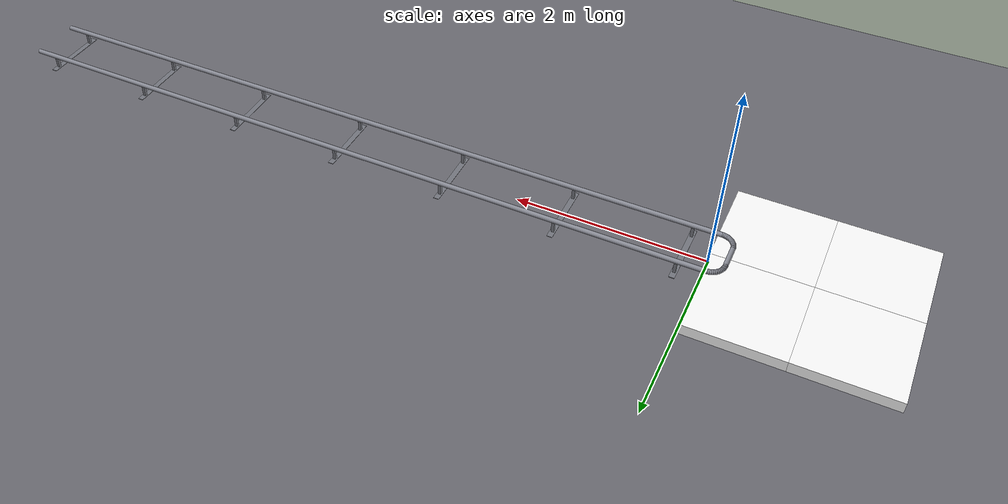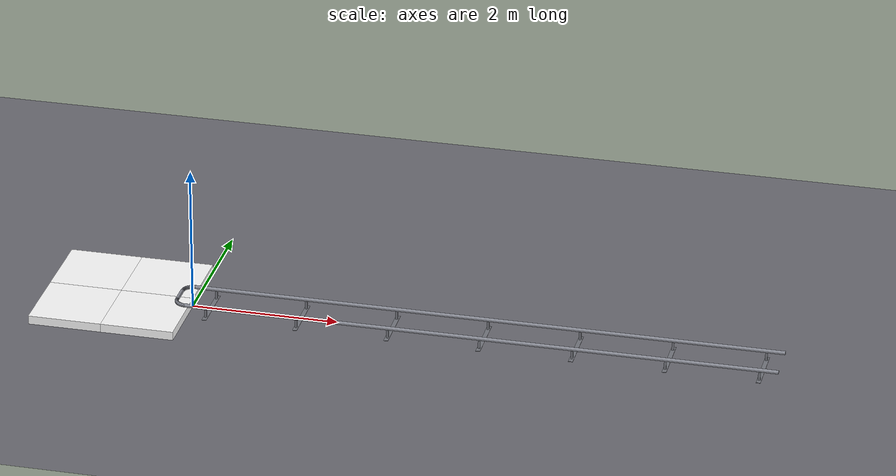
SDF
<?xml version="1.0" ?>
<!-- СГЕНЕРИРОВАНО scripts/gen_rails_world.py, руками не править. -->
<!-- Заезд на рельсы: фанера метр на метр и трубы с П-образным концом. -->
<sdf version="1.9">
  <world name="rails">
    <!-- Шаг 1 мс: у робота 48 отдельных тел роликов, и к ним
         добавился контакт бочки ролика с крутым бортом трубы. -->
    <physics name="1ms" type="dart">
      <max_step_size>0.001</max_step_size>
      <real_time_factor>1.0</real_time_factor>
    </physics>
    <plugin filename="gz-sim-physics-system" name="gz::sim::systems::Physics"/>
    <plugin filename="gz-sim-user-commands-system" name="gz::sim::systems::UserCommands"/>
    <plugin filename="gz-sim-scene-broadcaster-system" name="gz::sim::systems::SceneBroadcaster"/>
    <plugin filename="gz-sim-imu-system" name="gz::sim::systems::Imu"/>
    <plugin filename="gz-sim-sensors-system"
            name="gz::sim::systems::Sensors">
      <render_engine>ogre2</render_engine>
    </plugin>

    <light type="directional" name="sun">
      <cast_shadows>true</cast_shadows>
      <pose>0 0 10 0 0 0</pose>
      <diffuse>0.85 0.85 0.85 1</diffuse>
      <specular>0.25 0.25 0.25 1</specular>
      <direction>-0.4 0.2 -0.9</direction>
    </light>

    <model name="ground_plane">
      <static>true</static>
      <link name="link">
        <collision name="collision">
          <geometry><plane><normal>0 0 1</normal><size>60 60</size></plane></geometry>
          <surface><friction><ode><mu>1.0</mu><mu2>1.0</mu2></ode></friction></surface>
        </collision>
        <visual name="visual">
          <geometry><plane><normal>0 0 1</normal><size>60 60</size></plane></geometry>
          <material><ambient>0.32 0.32 0.34 1</ambient>
            <diffuse>0.42 0.42 0.45 1</diffuse></material>
        </visual>
      </link>
    </model>

    <model name="deck">
      <static>true</static>
      <link name="link">
        <collision name="collision">
          <pose>-1.0000 0.0000 0.0600 0 0 0</pose>
          <geometry><box><size>2.000 2.000 0.1200</size></box></geometry>
          <surface><friction><ode><mu>0.9</mu><mu2>0.9</mu2></ode></friction></surface>
        </collision>
        <visual name="sheet_0_0">
          <pose>-1.5000 -0.5000 0.0600 0 0 0.0000</pose>
          <geometry><box><size>1.0000 1.0000 0.1200</size></box></geometry>
          <material><diffuse>1 1 1 1</diffuse>
            <pbr><metal><albedo_map>model://maze_nav/meshes/plywood.png</albedo_map><roughness>0.85</roughness><metalness>0</metalness></metal></pbr></material>
        </visual>
        <visual name="sheet_0_1">
          <pose>-1.5000 0.5000 0.0600 0 0 1.5708</pose>
          <geometry><box><size>1.0000 1.0000 0.1200</size></box></geometry>
          <material><diffuse>1 1 1 1</diffuse>
            <pbr><metal><albedo_map>model://maze_nav/meshes/plywood.png</albedo_map><roughness>0.85</roughness><metalness>0</metalness></metal></pbr></material>
        </visual>
        <visual name="sheet_1_0">
          <pose>-0.5000 -0.5000 0.0600 0 0 1.5708</pose>
          <geometry><box><size>1.0000 1.0000 0.1200</size></box></geometry>
          <material><diffuse>1 1 1 1</diffuse>
            <pbr><metal><albedo_map>model://maze_nav/meshes/plywood.png</albedo_map><roughness>0.85</roughness><metalness>0</metalness></metal></pbr></material>
        </visual>
        <visual name="sheet_1_1">
          <pose>-0.5000 0.5000 0.0600 0 0 0.0000</pose>
          <geometry><box><size>1.0000 1.0000 0.1200</size></box></geometry>
          <material><diffuse>1 1 1 1</diffuse>
            <pbr><metal><albedo_map>model://maze_nav/meshes/plywood.png</albedo_map><roughness>0.85</roughness><metalness>0</metalness></metal></pbr></material>
        </visual>
      </link>
    </model>

    <!-- Рельсы: труба 51x2 мм,
         колея 545 мм, П-образный конец с радиусом
         145 мм и прямой перемычкой 255 мм.
         Масса прямых участков 39 кг. -->
    <model name="rails">
      <static>true</static>
      <link name="link">
        <collision name="collision_rail_l">
          <pose>3.9803 0.2725 0.1455 0 1.570796 0</pose>
          <geometry><cylinder><radius>0.02550</radius><length>8.0395</length></cylinder></geometry>
          <surface><friction><ode><mu>0.6</mu><mu2>0.6</mu2></ode></friction></surface>
        </collision>
        <visual name="visual_rail_l">
          <pose>3.9803 0.2725 0.1455 0 1.570796 0</pose>
          <geometry><cylinder><radius>0.02550</radius><length>8.0395</length></cylinder></geometry>
          <material><ambient>0.30 0.30 0.33 1</ambient>
            <diffuse>0.55 0.56 0.60 1</diffuse>
            <specular>0.45 0.45 0.45 1</specular></material>
        </visual>
        <collision name="collision_rail_r">
          <pose>3.9803 -0.2725 0.1455 0 1.570796 0</pose>
          <geometry><cylinder><radius>0.02550</radius><length>8.0395</length></cylinder></geometry>
          <surface><friction><ode><mu>0.6</mu><mu2>0.6</mu2></ode></friction></surface>
        </collision>
        <visual name="visual_rail_r">
          <pose>3.9803 -0.2725 0.1455 0 1.570796 0</pose>
          <geometry><cylinder><radius>0.02550</radius><length>8.0395</length></cylinder></geometry>
          <material><ambient>0.30 0.30 0.33 1</ambient>
            <diffuse>0.55 0.56 0.60 1</diffuse>
            <specular>0.45 0.45 0.45 1</specular></material>
        </visual>
        <collision name="collision_cross">
          <pose>-0.1845 0 0.1455 1.570796 0 0</pose>
          <geometry><cylinder><radius>0.02550</radius><length>0.2550</length></cylinder></geometry>
          <surface><friction><ode><mu>0.6</mu><mu2>0.6</mu2></ode></friction></surface>
        </collision>
        <visual name="visual_cross">
          <pose>-0.1845 0 0.1455 1.570796 0 0</pose>
          <geometry><cylinder><radius>0.02550</radius><length>0.2550</length></cylinder></geometry>
          <material><ambient>0.30 0.30 0.33 1</ambient>
            <diffuse>0.55 0.56 0.60 1</diffuse>
            <specular>0.45 0.45 0.45 1</specular></material>
        </visual>
        <collision name="collision_arc_l_0">
          <pose>-0.1843 0.1356 0.1455 0 1.570796 1.514696</pose>
          <geometry><cylinder><radius>0.02550</radius><length>0.0187</length></cylinder></geometry>
          <surface><friction><ode><mu>0.6</mu><mu2>0.6</mu2></ode></friction></surface>
        </collision>
        <visual name="visual_arc_l_0">
          <pose>-0.1843 0.1356 0.1455 0 1.570796 1.514696</pose>
          <geometry><cylinder><radius>0.02550</radius><length>0.0187</length></cylinder></geometry>
          <material><ambient>0.30 0.30 0.33 1</ambient>
            <diffuse>0.55 0.56 0.60 1</diffuse>
            <specular>0.45 0.45 0.45 1</specular></material>
        </visual>
        <collision name="collision_arc_l_1">
          <pose>-0.1825 0.1518 0.1455 0 1.570796 1.402497</pose>
          <geometry><cylinder><radius>0.02550</radius><length>0.0187</length></cylinder></geometry>
          <surface><friction><ode><mu>0.6</mu><mu2>0.6</mu2></ode></friction></surface>
        </collision>
        <visual name="visual_arc_l_1">
          <pose>-0.1825 0.1518 0.1455 0 1.570796 1.402497</pose>
          <geometry><cylinder><radius>0.02550</radius><length>0.0187</length></cylinder></geometry>
          <material><ambient>0.30 0.30 0.33 1</ambient>
            <diffuse>0.55 0.56 0.60 1</diffuse>
            <specular>0.45 0.45 0.45 1</specular></material>
        </visual>
        <collision name="collision_arc_l_2">
          <pose>-0.1788 0.1676 0.1455 0 1.570796 1.290297</pose>
          <geometry><cylinder><radius>0.02550</radius><length>0.0187</length></cylinder></geometry>
          <surface><friction><ode><mu>0.6</mu><mu2>0.6</mu2></ode></friction></surface>
        </collision>
        <visual name="visual_arc_l_2">
          <pose>-0.1788 0.1676 0.1455 0 1.570796 1.290297</pose>
          <geometry><cylinder><radius>0.02550</radius><length>0.0187</length></cylinder></geometry>
          <material><ambient>0.30 0.30 0.33 1</ambient>
            <diffuse>0.55 0.56 0.60 1</diffuse>
            <specular>0.45 0.45 0.45 1</specular></material>
        </visual>
        <collision name="collision_arc_l_3">
          <pose>-0.1735 0.1830 0.1455 0 1.570796 1.178097</pose>
          <geometry><cylinder><radius>0.02550</radius><length>0.0187</length></cylinder></geometry>
          <surface><friction><ode><mu>0.6</mu><mu2>0.6</mu2></ode></friction></surface>
        </collision>
        <visual name="visual_arc_l_3">
          <pose>-0.1735 0.1830 0.1455 0 1.570796 1.178097</pose>
          <geometry><cylinder><radius>0.02550</radius><length>0.0187</length></cylinder></geometry>
          <material><ambient>0.30 0.30 0.33 1</ambient>
            <diffuse>0.55 0.56 0.60 1</diffuse>
            <specular>0.45 0.45 0.45 1</specular></material>
        </visual>
        <collision name="collision_arc_l_4">
          <pose>-0.1664 0.1976 0.1455 0 1.570796 1.065898</pose>
          <geometry><cylinder><radius>0.02550</radius><length>0.0187</length></cylinder></geometry>
          <surface><friction><ode><mu>0.6</mu><mu2>0.6</mu2></ode></friction></surface>
        </collision>
        <visual name="visual_arc_l_4">
          <pose>-0.1664 0.1976 0.1455 0 1.570796 1.065898</pose>
          <geometry><cylinder><radius>0.02550</radius><length>0.0187</length></cylinder></geometry>
          <material><ambient>0.30 0.30 0.33 1</ambient>
            <diffuse>0.55 0.56 0.60 1</diffuse>
            <specular>0.45 0.45 0.45 1</specular></material>
        </visual>
        <collision name="collision_arc_l_5">
          <pose>-0.1578 0.2114 0.1455 0 1.570796 0.953698</pose>
          <geometry><cylinder><radius>0.02550</radius><length>0.0187</length></cylinder></geometry>
          <surface><friction><ode><mu>0.6</mu><mu2>0.6</mu2></ode></friction></surface>
        </collision>
        <visual name="visual_arc_l_5">
          <pose>-0.1578 0.2114 0.1455 0 1.570796 0.953698</pose>
          <geometry><cylinder><radius>0.02550</radius><length>0.0187</length></cylinder></geometry>
          <material><ambient>0.30 0.30 0.33 1</ambient>
            <diffuse>0.55 0.56 0.60 1</diffuse>
            <specular>0.45 0.45 0.45 1</specular></material>
        </visual>
        <collision name="collision_arc_l_6">
          <pose>-0.1476 0.2241 0.1455 0 1.570796 0.841498</pose>
          <geometry><cylinder><radius>0.02550</radius><length>0.0187</length></cylinder></geometry>
          <surface><friction><ode><mu>0.6</mu><mu2>0.6</mu2></ode></friction></surface>
        </collision>
        <visual name="visual_arc_l_6">
          <pose>-0.1476 0.2241 0.1455 0 1.570796 0.841498</pose>
          <geometry><cylinder><radius>0.02550</radius><length>0.0187</length></cylinder></geometry>
          <material><ambient>0.30 0.30 0.33 1</ambient>
            <diffuse>0.55 0.56 0.60 1</diffuse>
            <specular>0.45 0.45 0.45 1</specular></material>
        </visual>
        <collision name="collision_arc_l_7">
          <pose>-0.1361 0.2356 0.1455 0 1.570796 0.729298</pose>
          <geometry><cylinder><radius>0.02550</radius><length>0.0187</length></cylinder></geometry>
          <surface><friction><ode><mu>0.6</mu><mu2>0.6</mu2></ode></friction></surface>
        </collision>
        <visual name="visual_arc_l_7">
          <pose>-0.1361 0.2356 0.1455 0 1.570796 0.729298</pose>
          <geometry><cylinder><radius>0.02550</radius><length>0.0187</length></cylinder></geometry>
          <material><ambient>0.30 0.30 0.33 1</ambient>
            <diffuse>0.55 0.56 0.60 1</diffuse>
            <specular>0.45 0.45 0.45 1</specular></material>
        </visual>
        <collision name="collision_arc_l_8">
          <pose>-0.1234 0.2458 0.1455 0 1.570796 0.617099</pose>
          <geometry><cylinder><radius>0.02550</radius><length>0.0187</length></cylinder></geometry>
          <surface><friction><ode><mu>0.6</mu><mu2>0.6</mu2></ode></friction></surface>
        </collision>
        <visual name="visual_arc_l_8">
          <pose>-0.1234 0.2458 0.1455 0 1.570796 0.617099</pose>
          <geometry><cylinder><radius>0.02550</radius><length>0.0187</length></cylinder></geometry>
          <material><ambient>0.30 0.30 0.33 1</ambient>
            <diffuse>0.55 0.56 0.60 1</diffuse>
            <specular>0.45 0.45 0.45 1</specular></material>
        </visual>
        <collision name="collision_arc_l_9">
          <pose>-0.1096 0.2544 0.1455 0 1.570796 0.504899</pose>
          <geometry><cylinder><radius>0.02550</radius><length>0.0187</length></cylinder></geometry>
          <surface><friction><ode><mu>0.6</mu><mu2>0.6</mu2></ode></friction></surface>
        </collision>
        <visual name="visual_arc_l_9">
          <pose>-0.1096 0.2544 0.1455 0 1.570796 0.504899</pose>
          <geometry><cylinder><radius>0.02550</radius><length>0.0187</length></cylinder></geometry>
          <material><ambient>0.30 0.30 0.33 1</ambient>
            <diffuse>0.55 0.56 0.60 1</diffuse>
            <specular>0.45 0.45 0.45 1</specular></material>
        </visual>
        <collision name="collision_arc_l_10">
          <pose>-0.0950 0.2615 0.1455 0 1.570796 0.392699</pose>
          <geometry><cylinder><radius>0.02550</radius><length>0.0187</length></cylinder></geometry>
          <surface><friction><ode><mu>0.6</mu><mu2>0.6</mu2></ode></friction></surface>
        </collision>
        <visual name="visual_arc_l_10">
          <pose>-0.0950 0.2615 0.1455 0 1.570796 0.392699</pose>
          <geometry><cylinder><radius>0.02550</radius><length>0.0187</length></cylinder></geometry>
          <material><ambient>0.30 0.30 0.33 1</ambient>
            <diffuse>0.55 0.56 0.60 1</diffuse>
            <specular>0.45 0.45 0.45 1</specular></material>
        </visual>
        <collision name="collision_arc_l_11">
          <pose>-0.0796 0.2668 0.1455 0 1.570796 0.280499</pose>
          <geometry><cylinder><radius>0.02550</radius><length>0.0187</length></cylinder></geometry>
          <surface><friction><ode><mu>0.6</mu><mu2>0.6</mu2></ode></friction></surface>
        </collision>
        <visual name="visual_arc_l_11">
          <pose>-0.0796 0.2668 0.1455 0 1.570796 0.280499</pose>
          <geometry><cylinder><radius>0.02550</radius><length>0.0187</length></cylinder></geometry>
          <material><ambient>0.30 0.30 0.33 1</ambient>
            <diffuse>0.55 0.56 0.60 1</diffuse>
            <specular>0.45 0.45 0.45 1</specular></material>
        </visual>
        <collision name="collision_arc_l_12">
          <pose>-0.0638 0.2705 0.1455 0 1.570796 0.168300</pose>
          <geometry><cylinder><radius>0.02550</radius><length>0.0187</length></cylinder></geometry>
          <surface><friction><ode><mu>0.6</mu><mu2>0.6</mu2></ode></friction></surface>
        </collision>
        <visual name="visual_arc_l_12">
          <pose>-0.0638 0.2705 0.1455 0 1.570796 0.168300</pose>
          <geometry><cylinder><radius>0.02550</radius><length>0.0187</length></cylinder></geometry>
          <material><ambient>0.30 0.30 0.33 1</ambient>
            <diffuse>0.55 0.56 0.60 1</diffuse>
            <specular>0.45 0.45 0.45 1</specular></material>
        </visual>
        <collision name="collision_arc_l_13">
          <pose>-0.0476 0.2723 0.1455 0 1.570796 0.056100</pose>
          <geometry><cylinder><radius>0.02550</radius><length>0.0187</length></cylinder></geometry>
          <surface><friction><ode><mu>0.6</mu><mu2>0.6</mu2></ode></friction></surface>
        </collision>
        <visual name="visual_arc_l_13">
          <pose>-0.0476 0.2723 0.1455 0 1.570796 0.056100</pose>
          <geometry><cylinder><radius>0.02550</radius><length>0.0187</length></cylinder></geometry>
          <material><ambient>0.30 0.30 0.33 1</ambient>
            <diffuse>0.55 0.56 0.60 1</diffuse>
            <specular>0.45 0.45 0.45 1</specular></material>
        </visual>
        <collision name="collision_arc_r_0">
          <pose>-0.1843 -0.1356 0.1455 0 1.570796 -1.514696</pose>
          <geometry><cylinder><radius>0.02550</radius><length>0.0187</length></cylinder></geometry>
          <surface><friction><ode><mu>0.6</mu><mu2>0.6</mu2></ode></friction></surface>
        </collision>
        <visual name="visual_arc_r_0">
          <pose>-0.1843 -0.1356 0.1455 0 1.570796 -1.514696</pose>
          <geometry><cylinder><radius>0.02550</radius><length>0.0187</length></cylinder></geometry>
          <material><ambient>0.30 0.30 0.33 1</ambient>
            <diffuse>0.55 0.56 0.60 1</diffuse>
            <specular>0.45 0.45 0.45 1</specular></material>
        </visual>
        <collision name="collision_arc_r_1">
          <pose>-0.1825 -0.1518 0.1455 0 1.570796 -1.402497</pose>
          <geometry><cylinder><radius>0.02550</radius><length>0.0187</length></cylinder></geometry>
          <surface><friction><ode><mu>0.6</mu><mu2>0.6</mu2></ode></friction></surface>
        </collision>
        <visual name="visual_arc_r_1">
          <pose>-0.1825 -0.1518 0.1455 0 1.570796 -1.402497</pose>
          <geometry><cylinder><radius>0.02550</radius><length>0.0187</length></cylinder></geometry>
          <material><ambient>0.30 0.30 0.33 1</ambient>
            <diffuse>0.55 0.56 0.60 1</diffuse>
            <specular>0.45 0.45 0.45 1</specular></material>
        </visual>
        <collision name="collision_arc_r_2">
          <pose>-0.1788 -0.1676 0.1455 0 1.570796 -1.290297</pose>
          <geometry><cylinder><radius>0.02550</radius><length>0.0187</length></cylinder></geometry>
          <surface><friction><ode><mu>0.6</mu><mu2>0.6</mu2></ode></friction></surface>
        </collision>
        <visual name="visual_arc_r_2">
          <pose>-0.1788 -0.1676 0.1455 0 1.570796 -1.290297</pose>
          <geometry><cylinder><radius>0.02550</radius><length>0.0187</length></cylinder></geometry>
          <material><ambient>0.30 0.30 0.33 1</ambient>
            <diffuse>0.55 0.56 0.60 1</diffuse>
            <specular>0.45 0.45 0.45 1</specular></material>
        </visual>
        <collision name="collision_arc_r_3">
          <pose>-0.1735 -0.1830 0.1455 0 1.570796 -1.178097</pose>
          <geometry><cylinder><radius>0.02550</radius><length>0.0187</length></cylinder></geometry>
          <surface><friction><ode><mu>0.6</mu><mu2>0.6</mu2></ode></friction></surface>
        </collision>
        <visual name="visual_arc_r_3">
          <pose>-0.1735 -0.1830 0.1455 0 1.570796 -1.178097</pose>
          <geometry><cylinder><radius>0.02550</radius><length>0.0187</length></cylinder></geometry>
          <material><ambient>0.30 0.30 0.33 1</ambient>
            <diffuse>0.55 0.56 0.60 1</diffuse>
            <specular>0.45 0.45 0.45 1</specular></material>
        </visual>
        <collision name="collision_arc_r_4">
          <pose>-0.1664 -0.1976 0.1455 0 1.570796 -1.065898</pose>
          <geometry><cylinder><radius>0.02550</radius><length>0.0187</length></cylinder></geometry>
          <surface><friction><ode><mu>0.6</mu><mu2>0.6</mu2></ode></friction></surface>
        </collision>
        <visual name="visual_arc_r_4">
          <pose>-0.1664 -0.1976 0.1455 0 1.570796 -1.065898</pose>
          <geometry><cylinder><radius>0.02550</radius><length>0.0187</length></cylinder></geometry>
          <material><ambient>0.30 0.30 0.33 1</ambient>
            <diffuse>0.55 0.56 0.60 1</diffuse>
            <specular>0.45 0.45 0.45 1</specular></material>
        </visual>
        <collision name="collision_arc_r_5">
          <pose>-0.1578 -0.2114 0.1455 0 1.570796 -0.953698</pose>
          <geometry><cylinder><radius>0.02550</radius><length>0.0187</length></cylinder></geometry>
          <surface><friction><ode><mu>0.6</mu><mu2>0.6</mu2></ode></friction></surface>
        </collision>
        <visual name="visual_arc_r_5">
          <pose>-0.1578 -0.2114 0.1455 0 1.570796 -0.953698</pose>
          <geometry><cylinder><radius>0.02550</radius><length>0.0187</length></cylinder></geometry>
          <material><ambient>0.30 0.30 0.33 1</ambient>
            <diffuse>0.55 0.56 0.60 1</diffuse>
            <specular>0.45 0.45 0.45 1</specular></material>
        </visual>
        <collision name="collision_arc_r_6">
          <pose>-0.1476 -0.2241 0.1455 0 1.570796 -0.841498</pose>
          <geometry><cylinder><radius>0.02550</radius><length>0.0187</length></cylinder></geometry>
          <surface><friction><ode><mu>0.6</mu><mu2>0.6</mu2></ode></friction></surface>
        </collision>
        <visual name="visual_arc_r_6">
          <pose>-0.1476 -0.2241 0.1455 0 1.570796 -0.841498</pose>
          <geometry><cylinder><radius>0.02550</radius><length>0.0187</length></cylinder></geometry>
          <material><ambient>0.30 0.30 0.33 1</ambient>
            <diffuse>0.55 0.56 0.60 1</diffuse>
            <specular>0.45 0.45 0.45 1</specular></material>
        </visual>
        <collision name="collision_arc_r_7">
          <pose>-0.1361 -0.2356 0.1455 0 1.570796 -0.729298</pose>
          <geometry><cylinder><radius>0.02550</radius><length>0.0187</length></cylinder></geometry>
          <surface><friction><ode><mu>0.6</mu><mu2>0.6</mu2></ode></friction></surface>
        </collision>
        <visual name="visual_arc_r_7">
          <pose>-0.1361 -0.2356 0.1455 0 1.570796 -0.729298</pose>
          <geometry><cylinder><radius>0.02550</radius><length>0.0187</length></cylinder></geometry>
          <material><ambient>0.30 0.30 0.33 1</ambient>
            <diffuse>0.55 0.56 0.60 1</diffuse>
            <specular>0.45 0.45 0.45 1</specular></material>
        </visual>
        <collision name="collision_arc_r_8">
          <pose>-0.1234 -0.2458 0.1455 0 1.570796 -0.617099</pose>
          <geometry><cylinder><radius>0.02550</radius><length>0.0187</length></cylinder></geometry>
          <surface><friction><ode><mu>0.6</mu><mu2>0.6</mu2></ode></friction></surface>
        </collision>
        <visual name="visual_arc_r_8">
          <pose>-0.1234 -0.2458 0.1455 0 1.570796 -0.617099</pose>
          <geometry><cylinder><radius>0.02550</radius><length>0.0187</length></cylinder></geometry>
          <material><ambient>0.30 0.30 0.33 1</ambient>
            <diffuse>0.55 0.56 0.60 1</diffuse>
            <specular>0.45 0.45 0.45 1</specular></material>
        </visual>
        <collision name="collision_arc_r_9">
          <pose>-0.1096 -0.2544 0.1455 0 1.570796 -0.504899</pose>
          <geometry><cylinder><radius>0.02550</radius><length>0.0187</length></cylinder></geometry>
          <surface><friction><ode><mu>0.6</mu><mu2>0.6</mu2></ode></friction></surface>
        </collision>
        <visual name="visual_arc_r_9">
          <pose>-0.1096 -0.2544 0.1455 0 1.570796 -0.504899</pose>
          <geometry><cylinder><radius>0.02550</radius><length>0.0187</length></cylinder></geometry>
          <material><ambient>0.30 0.30 0.33 1</ambient>
            <diffuse>0.55 0.56 0.60 1</diffuse>
            <specular>0.45 0.45 0.45 1</specular></material>
        </visual>
        <collision name="collision_arc_r_10">
          <pose>-0.0950 -0.2615 0.1455 0 1.570796 -0.392699</pose>
          <geometry><cylinder><radius>0.02550</radius><length>0.0187</length></cylinder></geometry>
          <surface><friction><ode><mu>0.6</mu><mu2>0.6</mu2></ode></friction></surface>
        </collision>
        <visual name="visual_arc_r_10">
          <pose>-0.0950 -0.2615 0.1455 0 1.570796 -0.392699</pose>
          <geometry><cylinder><radius>0.02550</radius><length>0.0187</length></cylinder></geometry>
          <material><ambient>0.30 0.30 0.33 1</ambient>
            <diffuse>0.55 0.56 0.60 1</diffuse>
            <specular>0.45 0.45 0.45 1</specular></material>
        </visual>
        <collision name="collision_arc_r_11">
          <pose>-0.0796 -0.2668 0.1455 0 1.570796 -0.280499</pose>
          <geometry><cylinder><radius>0.02550</radius><length>0.0187</length></cylinder></geometry>
          <surface><friction><ode><mu>0.6</mu><mu2>0.6</mu2></ode></friction></surface>
        </collision>
        <visual name="visual_arc_r_11">
          <pose>-0.0796 -0.2668 0.1455 0 1.570796 -0.280499</pose>
          <geometry><cylinder><radius>0.02550</radius><length>0.0187</length></cylinder></geometry>
          <material><ambient>0.30 0.30 0.33 1</ambient>
            <diffuse>0.55 0.56 0.60 1</diffuse>
            <specular>0.45 0.45 0.45 1</specular></material>
        </visual>
        <collision name="collision_arc_r_12">
          <pose>-0.0638 -0.2705 0.1455 0 1.570796 -0.168300</pose>
          <geometry><cylinder><radius>0.02550</radius><length>0.0187</length></cylinder></geometry>
          <surface><friction><ode><mu>0.6</mu><mu2>0.6</mu2></ode></friction></surface>
        </collision>
        <visual name="visual_arc_r_12">
          <pose>-0.0638 -0.2705 0.1455 0 1.570796 -0.168300</pose>
          <geometry><cylinder><radius>0.02550</radius><length>0.0187</length></cylinder></geometry>
          <material><ambient>0.30 0.30 0.33 1</ambient>
            <diffuse>0.55 0.56 0.60 1</diffuse>
            <specular>0.45 0.45 0.45 1</specular></material>
        </visual>
        <collision name="collision_arc_r_13">
          <pose>-0.0476 -0.2723 0.1455 0 1.570796 -0.056100</pose>
          <geometry><cylinder><radius>0.02550</radius><length>0.0187</length></cylinder></geometry>
          <surface><friction><ode><mu>0.6</mu><mu2>0.6</mu2></ode></friction></surface>
        </collision>
        <visual name="visual_arc_r_13">
          <pose>-0.0476 -0.2723 0.1455 0 1.570796 -0.056100</pose>
          <geometry><cylinder><radius>0.02550</radius><length>0.0187</length></cylinder></geometry>
          <material><ambient>0.30 0.30 0.33 1</ambient>
            <diffuse>0.55 0.56 0.60 1</diffuse>
            <specular>0.45 0.45 0.45 1</specular></material>
        </visual>
      </link>
    </model>

    <!-- Опоры за фанерой, шаг 1.25 м. Стойки строго под
         трубами: меканум-колёса проходят снаружи них. -->
    <model name="support_0">
      <static>true</static>
      <link name="link">
        <visual name="plate_visual">
          <pose>0.250 0 0.0030 0 0 0</pose>
          <geometry><box><size>0.060 0.720 0.0060</size></box></geometry>
          <material><ambient>0.26 0.26 0.28 1</ambient>
            <diffuse>0.46 0.47 0.50 1</diffuse></material>
        </visual>
        <collision name="plate_collision">
          <pose>0.250 0 0.0030 0 0 0</pose>
          <geometry><box><size>0.060 0.720 0.0060</size></box></geometry>
        </collision>
        <visual name="post_l_visual">
          <pose>0.250 0.2725 0.0630 0 0 0</pose>
          <geometry><box><size>0.030 0.030 0.1140</size></box></geometry>
          <material><ambient>0.26 0.26 0.28 1</ambient>
            <diffuse>0.46 0.47 0.50 1</diffuse></material>
        </visual>
        <collision name="post_l_collision">
          <pose>0.250 0.2725 0.0630 0 0 0</pose>
          <geometry><box><size>0.030 0.030 0.1140</size></box></geometry>
        </collision>
        <visual name="post_r_visual">
          <pose>0.250 -0.2725 0.0630 0 0 0</pose>
          <geometry><box><size>0.030 0.030 0.1140</size></box></geometry>
          <material><ambient>0.26 0.26 0.28 1</ambient>
            <diffuse>0.46 0.47 0.50 1</diffuse></material>
        </visual>
        <collision name="post_r_collision">
          <pose>0.250 -0.2725 0.0630 0 0 0</pose>
          <geometry><box><size>0.030 0.030 0.1140</size></box></geometry>
        </collision>
      </link>
    </model>
    <model name="support_1">
      <static>true</static>
      <link name="link">
        <visual name="plate_visual">
          <pose>1.500 0 0.0030 0 0 0</pose>
          <geometry><box><size>0.060 0.720 0.0060</size></box></geometry>
          <material><ambient>0.26 0.26 0.28 1</ambient>
            <diffuse>0.46 0.47 0.50 1</diffuse></material>
        </visual>
        <collision name="plate_collision">
          <pose>1.500 0 0.0030 0 0 0</pose>
          <geometry><box><size>0.060 0.720 0.0060</size></box></geometry>
        </collision>
        <visual name="post_l_visual">
          <pose>1.500 0.2725 0.0630 0 0 0</pose>
          <geometry><box><size>0.030 0.030 0.1140</size></box></geometry>
          <material><ambient>0.26 0.26 0.28 1</ambient>
            <diffuse>0.46 0.47 0.50 1</diffuse></material>
        </visual>
        <collision name="post_l_collision">
          <pose>1.500 0.2725 0.0630 0 0 0</pose>
          <geometry><box><size>0.030 0.030 0.1140</size></box></geometry>
        </collision>
        <visual name="post_r_visual">
          <pose>1.500 -0.2725 0.0630 0 0 0</pose>
          <geometry><box><size>0.030 0.030 0.1140</size></box></geometry>
          <material><ambient>0.26 0.26 0.28 1</ambient>
            <diffuse>0.46 0.47 0.50 1</diffuse></material>
        </visual>
        <collision name="post_r_collision">
          <pose>1.500 -0.2725 0.0630 0 0 0</pose>
          <geometry><box><size>0.030 0.030 0.1140</size></box></geometry>
        </collision>
      </link>
    </model>
    <model name="support_2">
      <static>true</static>
      <link name="link">
        <visual name="plate_visual">
          <pose>2.750 0 0.0030 0 0 0</pose>
          <geometry><box><size>0.060 0.720 0.0060</size></box></geometry>
          <material><ambient>0.26 0.26 0.28 1</ambient>
            <diffuse>0.46 0.47 0.50 1</diffuse></material>
        </visual>
        <collision name="plate_collision">
          <pose>2.750 0 0.0030 0 0 0</pose>
          <geometry><box><size>0.060 0.720 0.0060</size></box></geometry>
        </collision>
        <visual name="post_l_visual">
          <pose>2.750 0.2725 0.0630 0 0 0</pose>
          <geometry><box><size>0.030 0.030 0.1140</size></box></geometry>
          <material><ambient>0.26 0.26 0.28 1</ambient>
            <diffuse>0.46 0.47 0.50 1</diffuse></material>
        </visual>
        <collision name="post_l_collision">
          <pose>2.750 0.2725 0.0630 0 0 0</pose>
          <geometry><box><size>0.030 0.030 0.1140</size></box></geometry>
        </collision>
        <visual name="post_r_visual">
          <pose>2.750 -0.2725 0.0630 0 0 0</pose>
          <geometry><box><size>0.030 0.030 0.1140</size></box></geometry>
          <material><ambient>0.26 0.26 0.28 1</ambient>
            <diffuse>0.46 0.47 0.50 1</diffuse></material>
        </visual>
        <collision name="post_r_collision">
          <pose>2.750 -0.2725 0.0630 0 0 0</pose>
          <geometry><box><size>0.030 0.030 0.1140</size></box></geometry>
        </collision>
      </link>
    </model>
    <model name="support_3">
      <static>true</static>
      <link name="link">
        <visual name="plate_visual">
          <pose>4.000 0 0.0030 0 0 0</pose>
          <geometry><box><size>0.060 0.720 0.0060</size></box></geometry>
          <material><ambient>0.26 0.26 0.28 1</ambient>
            <diffuse>0.46 0.47 0.50 1</diffuse></material>
        </visual>
        <collision name="plate_collision">
          <pose>4.000 0 0.0030 0 0 0</pose>
          <geometry><box><size>0.060 0.720 0.0060</size></box></geometry>
        </collision>
        <visual name="post_l_visual">
          <pose>4.000 0.2725 0.0630 0 0 0</pose>
          <geometry><box><size>0.030 0.030 0.1140</size></box></geometry>
          <material><ambient>0.26 0.26 0.28 1</ambient>
            <diffuse>0.46 0.47 0.50 1</diffuse></material>
        </visual>
        <collision name="post_l_collision">
          <pose>4.000 0.2725 0.0630 0 0 0</pose>
          <geometry><box><size>0.030 0.030 0.1140</size></box></geometry>
        </collision>
        <visual name="post_r_visual">
          <pose>4.000 -0.2725 0.0630 0 0 0</pose>
          <geometry><box><size>0.030 0.030 0.1140</size></box></geometry>
          <material><ambient>0.26 0.26 0.28 1</ambient>
            <diffuse>0.46 0.47 0.50 1</diffuse></material>
        </visual>
        <collision name="post_r_collision">
          <pose>4.000 -0.2725 0.0630 0 0 0</pose>
          <geometry><box><size>0.030 0.030 0.1140</size></box></geometry>
        </collision>
      </link>
    </model>
    <model name="support_4">
      <static>true</static>
      <link name="link">
        <visual name="plate_visual">
          <pose>5.250 0 0.0030 0 0 0</pose>
          <geometry><box><size>0.060 0.720 0.0060</size></box></geometry>
          <material><ambient>0.26 0.26 0.28 1</ambient>
            <diffuse>0.46 0.47 0.50 1</diffuse></material>
        </visual>
        <collision name="plate_collision">
          <pose>5.250 0 0.0030 0 0 0</pose>
          <geometry><box><size>0.060 0.720 0.0060</size></box></geometry>
        </collision>
        <visual name="post_l_visual">
          <pose>5.250 0.2725 0.0630 0 0 0</pose>
          <geometry><box><size>0.030 0.030 0.1140</size></box></geometry>
          <material><ambient>0.26 0.26 0.28 1</ambient>
            <diffuse>0.46 0.47 0.50 1</diffuse></material>
        </visual>
        <collision name="post_l_collision">
          <pose>5.250 0.2725 0.0630 0 0 0</pose>
          <geometry><box><size>0.030 0.030 0.1140</size></box></geometry>
        </collision>
        <visual name="post_r_visual">
          <pose>5.250 -0.2725 0.0630 0 0 0</pose>
          <geometry><box><size>0.030 0.030 0.1140</size></box></geometry>
          <material><ambient>0.26 0.26 0.28 1</ambient>
            <diffuse>0.46 0.47 0.50 1</diffuse></material>
        </visual>
        <collision name="post_r_collision">
          <pose>5.250 -0.2725 0.0630 0 0 0</pose>
          <geometry><box><size>0.030 0.030 0.1140</size></box></geometry>
        </collision>
      </link>
    </model>
    <model name="support_5">
      <static>true</static>
      <link name="link">
        <visual name="plate_visual">
          <pose>6.500 0 0.0030 0 0 0</pose>
          <geometry><box><size>0.060 0.720 0.0060</size></box></geometry>
          <material><ambient>0.26 0.26 0.28 1</ambient>
            <diffuse>0.46 0.47 0.50 1</diffuse></material>
        </visual>
        <collision name="plate_collision">
          <pose>6.500 0 0.0030 0 0 0</pose>
          <geometry><box><size>0.060 0.720 0.0060</size></box></geometry>
        </collision>
        <visual name="post_l_visual">
          <pose>6.500 0.2725 0.0630 0 0 0</pose>
          <geometry><box><size>0.030 0.030 0.1140</size></box></geometry>
          <material><ambient>0.26 0.26 0.28 1</ambient>
            <diffuse>0.46 0.47 0.50 1</diffuse></material>
        </visual>
        <collision name="post_l_collision">
          <pose>6.500 0.2725 0.0630 0 0 0</pose>
          <geometry><box><size>0.030 0.030 0.1140</size></box></geometry>
        </collision>
        <visual name="post_r_visual">
          <pose>6.500 -0.2725 0.0630 0 0 0</pose>
          <geometry><box><size>0.030 0.030 0.1140</size></box></geometry>
          <material><ambient>0.26 0.26 0.28 1</ambient>
            <diffuse>0.46 0.47 0.50 1</diffuse></material>
        </visual>
        <collision name="post_r_collision">
          <pose>6.500 -0.2725 0.0630 0 0 0</pose>
          <geometry><box><size>0.030 0.030 0.1140</size></box></geometry>
        </collision>
      </link>
    </model>
    <model name="support_6">
      <static>true</static>
      <link name="link">
        <visual name="plate_visual">
          <pose>7.750 0 0.0030 0 0 0</pose>
          <geometry><box><size>0.060 0.720 0.0060</size></box></geometry>
          <material><ambient>0.26 0.26 0.28 1</ambient>
            <diffuse>0.46 0.47 0.50 1</diffuse></material>
        </visual>
        <collision name="plate_collision">
          <pose>7.750 0 0.0030 0 0 0</pose>
          <geometry><box><size>0.060 0.720 0.0060</size></box></geometry>
        </collision>
        <visual name="post_l_visual">
          <pose>7.750 0.2725 0.0630 0 0 0</pose>
          <geometry><box><size>0.030 0.030 0.1140</size></box></geometry>
          <material><ambient>0.26 0.26 0.28 1</ambient>
            <diffuse>0.46 0.47 0.50 1</diffuse></material>
        </visual>
        <collision name="post_l_collision">
          <pose>7.750 0.2725 0.0630 0 0 0</pose>
          <geometry><box><size>0.030 0.030 0.1140</size></box></geometry>
        </collision>
        <visual name="post_r_visual">
          <pose>7.750 -0.2725 0.0630 0 0 0</pose>
          <geometry><box><size>0.030 0.030 0.1140</size></box></geometry>
          <material><ambient>0.26 0.26 0.28 1</ambient>
            <diffuse>0.46 0.47 0.50 1</diffuse></material>
        </visual>
        <collision name="post_r_collision">
          <pose>7.750 -0.2725 0.0630 0 0 0</pose>
          <geometry><box><size>0.030 0.030 0.1140</size></box></geometry>
        </collision>
      </link>
    </model>
  </world>
</sdf>
